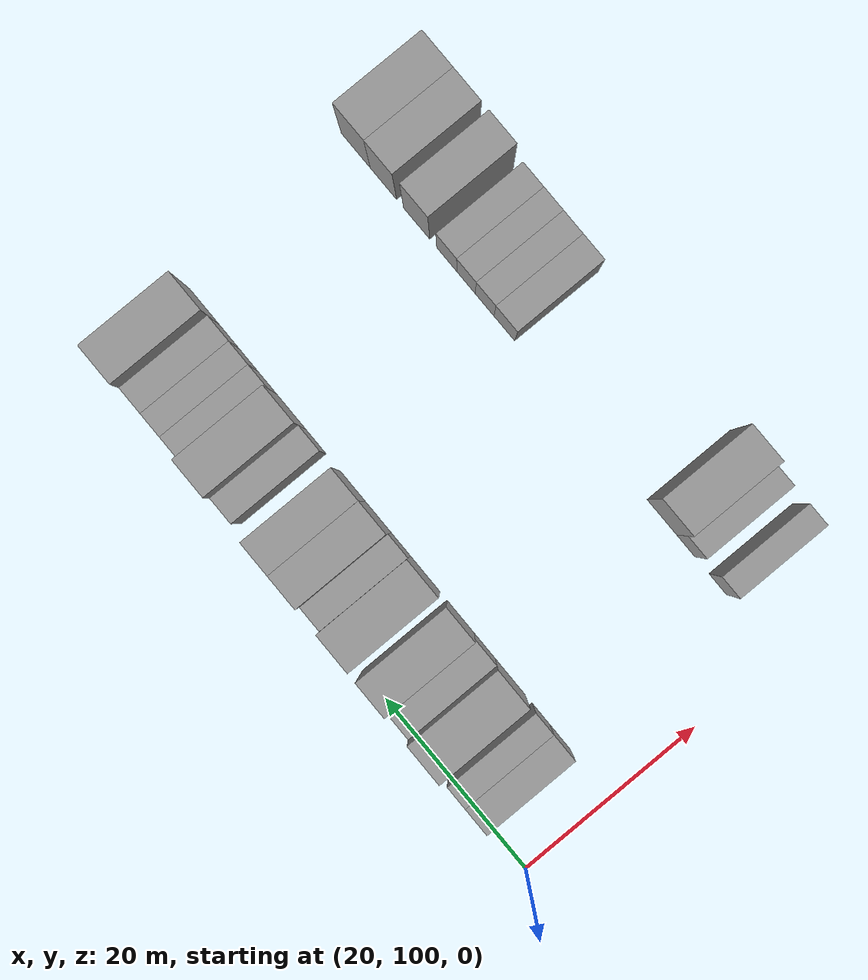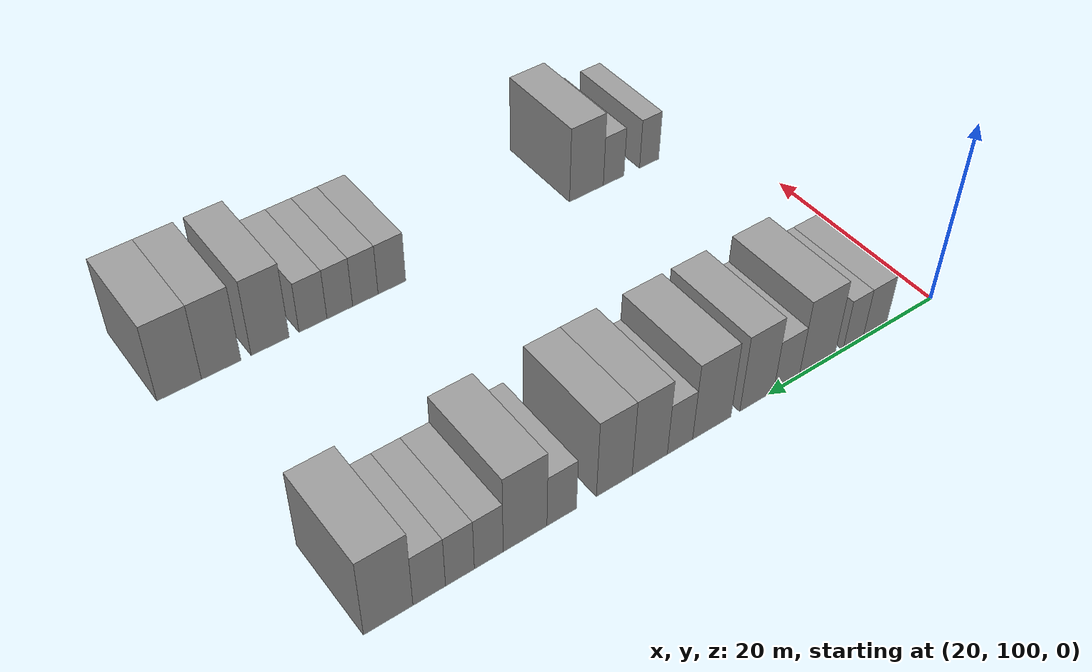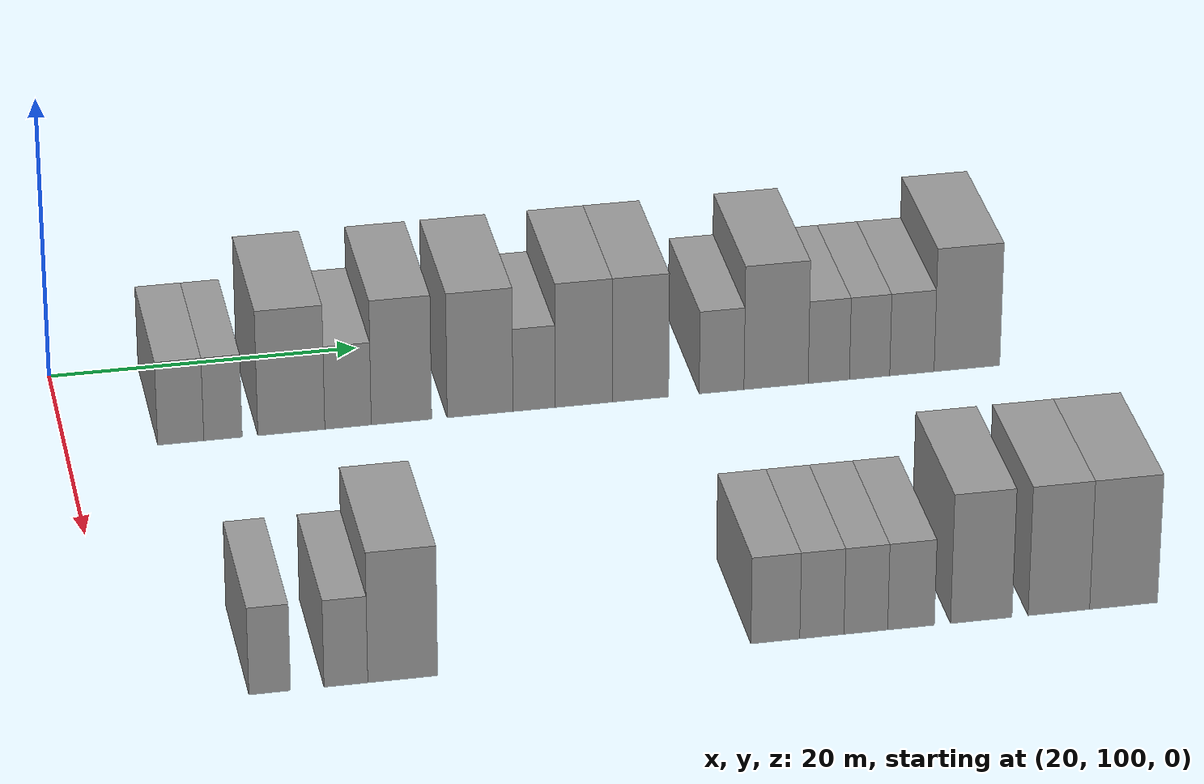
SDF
<sdf version="1.6">
 <world name="default">
  <model name="building_77">
   <static>1</static>
   <pose>25.0000 107.2240 0 0.000000 0.000000 0.000000</pose>
   <link name="link">
    <pose>0 0 3.00 0 0 0</pose>
    <collision name="collision"><geometry><box><size>10.0000 2.9394 6.0000</size></box></geometry></collision>
    <visual name="visual">
     <cast_shadows>0</cast_shadows>
     <geometry><box><size>10.0000 2.9394 6.0000</size></box></geometry>
     <material>
      <script>
       <uri>model://grey_wall/materials/scripts</uri>
       <uri>model://grey_wall/materials/textures</uri>
       <name>vrc/grey_wall</name>
      </script>
     </material>
    </visual>
   </link>
  </model>
  <model name="building_78">
   <static>1</static>
   <pose>25.0000 109.9187 0 0.000000 0.000000 0.000000</pose>
   <link name="link">
    <pose>0 0 3.00 0 0 0</pose>
    <collision name="collision"><geometry><box><size>10.0000 2.4499 6.0000</size></box></geometry></collision>
    <visual name="visual">
     <cast_shadows>0</cast_shadows>
     <geometry><box><size>10.0000 2.4499 6.0000</size></box></geometry>
     <material>
      <script>
       <uri>model://grey_wall/materials/scripts</uri>
       <uri>model://grey_wall/materials/textures</uri>
       <name>vrc/grey_wall</name>
      </script>
     </material>
    </visual>
   </link>
  </model>
  <model name="building_79">
   <static>1</static>
   <pose>25.0000 114.2880 0 0.000000 0.000000 0.000000</pose>
   <link name="link">
    <pose>0 0 4.50 0 0 0</pose>
    <collision name="collision"><geometry><box><size>10.0000 4.2888 9.0000</size></box></geometry></collision>
    <visual name="visual">
     <cast_shadows>0</cast_shadows>
     <geometry><box><size>10.0000 4.2888 9.0000</size></box></geometry>
     <material>
      <script>
       <uri>model://grey_wall/materials/scripts</uri>
       <uri>model://grey_wall/materials/textures</uri>
       <name>vrc/grey_wall</name>
      </script>
     </material>
    </visual>
   </link>
  </model>
  <model name="building_80">
   <static>1</static>
   <pose>25.0000 117.9234 0 0.000000 0.000000 0.000000</pose>
   <link name="link">
    <pose>0 0 3.00 0 0 0</pose>
    <collision name="collision"><geometry><box><size>10.0000 2.9819 6.0000</size></box></geometry></collision>
    <visual name="visual">
     <cast_shadows>0</cast_shadows>
     <geometry><box><size>10.0000 2.9819 6.0000</size></box></geometry>
     <material>
      <script>
       <uri>model://grey_wall/materials/scripts</uri>
       <uri>model://grey_wall/materials/textures</uri>
       <name>vrc/grey_wall</name>
      </script>
     </material>
    </visual>
   </link>
  </model>
  <model name="building_81">
   <static>1</static>
   <pose>25.0000 121.3598 0 0.000000 0.000000 0.000000</pose>
   <link name="link">
    <pose>0 0 4.50 0 0 0</pose>
    <collision name="collision"><geometry><box><size>10.0000 3.8908 9.0000</size></box></geometry></collision>
    <visual name="visual">
     <cast_shadows>0</cast_shadows>
     <geometry><box><size>10.0000 3.8908 9.0000</size></box></geometry>
     <material>
      <script>
       <uri>model://grey_wall/materials/scripts</uri>
       <uri>model://grey_wall/materials/textures</uri>
       <name>vrc/grey_wall</name>
      </script>
     </material>
    </visual>
   </link>
  </model>
  <model name="building_82">
   <static>1</static>
   <pose>25.0000 126.4308 0 0.000000 0.000000 0.000000</pose>
   <link name="link">
    <pose>0 0 4.50 0 0 0</pose>
    <collision name="collision"><geometry><box><size>10.0000 4.2512 9.0000</size></box></geometry></collision>
    <visual name="visual">
     <cast_shadows>0</cast_shadows>
     <geometry><box><size>10.0000 4.2512 9.0000</size></box></geometry>
     <material>
      <script>
       <uri>model://grey_wall/materials/scripts</uri>
       <uri>model://grey_wall/materials/textures</uri>
       <name>vrc/grey_wall</name>
      </script>
     </material>
    </visual>
   </link>
  </model>
  <model name="building_83">
   <static>1</static>
   <pose>25.0000 129.9223 0 0.000000 0.000000 0.000000</pose>
   <link name="link">
    <pose>0 0 3.00 0 0 0</pose>
    <collision name="collision"><geometry><box><size>10.0000 2.7317 6.0000</size></box></geometry></collision>
    <visual name="visual">
     <cast_shadows>0</cast_shadows>
     <geometry><box><size>10.0000 2.7317 6.0000</size></box></geometry>
     <material>
      <script>
       <uri>model://grey_wall/materials/scripts</uri>
       <uri>model://grey_wall/materials/textures</uri>
       <name>vrc/grey_wall</name>
      </script>
     </material>
    </visual>
   </link>
  </model>
  <model name="building_84">
   <static>1</static>
   <pose>25.0000 133.1480 0 0.000000 0.000000 0.000000</pose>
   <link name="link">
    <pose>0 0 4.50 0 0 0</pose>
    <collision name="collision"><geometry><box><size>10.0000 3.7199 9.0000</size></box></geometry></collision>
    <visual name="visual">
     <cast_shadows>0</cast_shadows>
     <geometry><box><size>10.0000 3.7199 9.0000</size></box></geometry>
     <material>
      <script>
       <uri>model://grey_wall/materials/scripts</uri>
       <uri>model://grey_wall/materials/textures</uri>
       <name>vrc/grey_wall</name>
      </script>
     </material>
    </visual>
   </link>
  </model>
  <model name="building_85">
   <static>1</static>
   <pose>25.0000 136.8513 0 0.000000 0.000000 0.000000</pose>
   <link name="link">
    <pose>0 0 4.50 0 0 0</pose>
    <collision name="collision"><geometry><box><size>10.0000 3.6866 9.0000</size></box></geometry></collision>
    <visual name="visual">
     <cast_shadows>0</cast_shadows>
     <geometry><box><size>10.0000 3.6866 9.0000</size></box></geometry>
     <material>
      <script>
       <uri>model://grey_wall/materials/scripts</uri>
       <uri>model://grey_wall/materials/textures</uri>
       <name>vrc/grey_wall</name>
      </script>
     </material>
    </visual>
   </link>
  </model>
  <model name="building_86">
   <static>1</static>
   <pose>25.0000 142.1601 0 0.000000 0.000000 0.000000</pose>
   <link name="link">
    <pose>0 0 3.00 0 0 0</pose>
    <collision name="collision"><geometry><box><size>10.0000 2.9312 6.0000</size></box></geometry></collision>
    <visual name="visual">
     <cast_shadows>0</cast_shadows>
     <geometry><box><size>10.0000 2.9312 6.0000</size></box></geometry>
     <material>
      <script>
       <uri>model://grey_wall/materials/scripts</uri>
       <uri>model://grey_wall/materials/textures</uri>
       <name>vrc/grey_wall</name>
      </script>
     </material>
    </visual>
   </link>
  </model>
  <model name="building_87">
   <static>1</static>
   <pose>25.0000 145.7357 0 0.000000 0.000000 0.000000</pose>
   <link name="link">
    <pose>0 0 4.50 0 0 0</pose>
    <collision name="collision"><geometry><box><size>10.0000 4.2200 9.0000</size></box></geometry></collision>
    <visual name="visual">
     <cast_shadows>0</cast_shadows>
     <geometry><box><size>10.0000 4.2200 9.0000</size></box></geometry>
     <material>
      <script>
       <uri>model://grey_wall/materials/scripts</uri>
       <uri>model://grey_wall/materials/textures</uri>
       <name>vrc/grey_wall</name>
      </script>
     </material>
    </visual>
   </link>
  </model>
  <model name="building_88">
   <static>1</static>
   <pose>25.0000 149.2051 0 0.000000 0.000000 0.000000</pose>
   <link name="link">
    <pose>0 0 3.00 0 0 0</pose>
    <collision name="collision"><geometry><box><size>10.0000 2.7187 6.0000</size></box></geometry></collision>
    <visual name="visual">
     <cast_shadows>0</cast_shadows>
     <geometry><box><size>10.0000 2.7187 6.0000</size></box></geometry>
     <material>
      <script>
       <uri>model://grey_wall/materials/scripts</uri>
       <uri>model://grey_wall/materials/textures</uri>
       <name>vrc/grey_wall</name>
      </script>
     </material>
    </visual>
   </link>
  </model>
  <model name="building_89">
   <static>1</static>
   <pose>25.0000 151.8957 0 0.000000 0.000000 0.000000</pose>
   <link name="link">
    <pose>0 0 3.00 0 0 0</pose>
    <collision name="collision"><geometry><box><size>10.0000 2.6626 6.0000</size></box></geometry></collision>
    <visual name="visual">
     <cast_shadows>0</cast_shadows>
     <geometry><box><size>10.0000 2.6626 6.0000</size></box></geometry>
     <material>
      <script>
       <uri>model://grey_wall/materials/scripts</uri>
       <uri>model://grey_wall/materials/textures</uri>
       <name>vrc/grey_wall</name>
      </script>
     </material>
    </visual>
   </link>
  </model>
  <model name="building_90">
   <static>1</static>
   <pose>25.0000 154.6971 0 0.000000 0.000000 0.000000</pose>
   <link name="link">
    <pose>0 0 3.00 0 0 0</pose>
    <collision name="collision"><geometry><box><size>10.0000 2.9401 6.0000</size></box></geometry></collision>
    <visual name="visual">
     <cast_shadows>0</cast_shadows>
     <geometry><box><size>10.0000 2.9401 6.0000</size></box></geometry>
     <material>
      <script>
       <uri>model://grey_wall/materials/scripts</uri>
       <uri>model://grey_wall/materials/textures</uri>
       <name>vrc/grey_wall</name>
      </script>
     </material>
    </visual>
   </link>
  </model>
  <model name="building_91">
   <static>1</static>
   <pose>25.0000 158.3461 0 0.000000 0.000000 0.000000</pose>
   <link name="link">
    <pose>0 0 4.50 0 0 0</pose>
    <collision name="collision"><geometry><box><size>10.0000 4.3579 9.0000</size></box></geometry></collision>
    <visual name="visual">
     <cast_shadows>0</cast_shadows>
     <geometry><box><size>10.0000 4.3579 9.0000</size></box></geometry>
     <material>
      <script>
       <uri>model://grey_wall/materials/scripts</uri>
       <uri>model://grey_wall/materials/textures</uri>
       <name>vrc/grey_wall</name>
      </script>
     </material>
    </visual>
   </link>
  </model>
  <model name="building_180">
   <static>1</static>
   <pose>55.0000 108.6047 0 0.000000 0.000000 0.000000</pose>
   <link name="link">
    <pose>0 0 3.00 0 0 0</pose>
    <collision name="collision"><geometry><box><size>10.0000 2.4838 6.0000</size></box></geometry></collision>
    <visual name="visual">
     <cast_shadows>0</cast_shadows>
     <geometry><box><size>10.0000 2.4838 6.0000</size></box></geometry>
     <material>
      <script>
       <uri>model://grey_wall/materials/scripts</uri>
       <uri>model://grey_wall/materials/textures</uri>
       <name>vrc/grey_wall</name>
      </script>
     </material>
    </visual>
   </link>
  </model>
  <model name="building_181">
   <static>1</static>
   <pose>55.0000 113.1565 0 0.000000 0.000000 0.000000</pose>
   <link name="link">
    <pose>0 0 3.00 0 0 0</pose>
    <collision name="collision"><geometry><box><size>10.0000 2.6197 6.0000</size></box></geometry></collision>
    <visual name="visual">
     <cast_shadows>0</cast_shadows>
     <geometry><box><size>10.0000 2.6197 6.0000</size></box></geometry>
     <material>
      <script>
       <uri>model://grey_wall/materials/scripts</uri>
       <uri>model://grey_wall/materials/textures</uri>
       <name>vrc/grey_wall</name>
      </script>
     </material>
    </visual>
   </link>
  </model>
  <model name="building_182">
   <static>1</static>
   <pose>55.0000 116.5625 0 0.000000 0.000000 0.000000</pose>
   <link name="link">
    <pose>0 0 4.50 0 0 0</pose>
    <collision name="collision"><geometry><box><size>10.0000 4.1923 9.0000</size></box></geometry></collision>
    <visual name="visual">
     <cast_shadows>0</cast_shadows>
     <geometry><box><size>10.0000 4.1923 9.0000</size></box></geometry>
     <material>
      <script>
       <uri>model://grey_wall/materials/scripts</uri>
       <uri>model://grey_wall/materials/textures</uri>
       <name>vrc/grey_wall</name>
      </script>
     </material>
    </visual>
   </link>
  </model>
  <model name="building_183">
   <static>1</static>
   <pose>55.0000 139.1529 0 0.000000 0.000000 0.000000</pose>
   <link name="link">
    <pose>0 0 3.00 0 0 0</pose>
    <collision name="collision"><geometry><box><size>10.0000 2.9962 6.0000</size></box></geometry></collision>
    <visual name="visual">
     <cast_shadows>0</cast_shadows>
     <geometry><box><size>10.0000 2.9962 6.0000</size></box></geometry>
     <material>
      <script>
       <uri>model://grey_wall/materials/scripts</uri>
       <uri>model://grey_wall/materials/textures</uri>
       <name>vrc/grey_wall</name>
      </script>
     </material>
    </visual>
   </link>
  </model>
  <model name="building_184">
   <static>1</static>
   <pose>55.0000 142.0051 0 0.000000 0.000000 0.000000</pose>
   <link name="link">
    <pose>0 0 3.00 0 0 0</pose>
    <collision name="collision"><geometry><box><size>10.0000 2.7082 6.0000</size></box></geometry></collision>
    <visual name="visual">
     <cast_shadows>0</cast_shadows>
     <geometry><box><size>10.0000 2.7082 6.0000</size></box></geometry>
     <material>
      <script>
       <uri>model://grey_wall/materials/scripts</uri>
       <uri>model://grey_wall/materials/textures</uri>
       <name>vrc/grey_wall</name>
      </script>
     </material>
    </visual>
   </link>
  </model>
  <model name="building_185">
   <static>1</static>
   <pose>55.0000 144.7057 0 0.000000 0.000000 0.000000</pose>
   <link name="link">
    <pose>0 0 3.00 0 0 0</pose>
    <collision name="collision"><geometry><box><size>10.0000 2.6929 6.0000</size></box></geometry></collision>
    <visual name="visual">
     <cast_shadows>0</cast_shadows>
     <geometry><box><size>10.0000 2.6929 6.0000</size></box></geometry>
     <material>
      <script>
       <uri>model://grey_wall/materials/scripts</uri>
       <uri>model://grey_wall/materials/textures</uri>
       <name>vrc/grey_wall</name>
      </script>
     </material>
    </visual>
   </link>
  </model>
  <model name="building_186">
   <static>1</static>
   <pose>55.0000 147.4935 0 0.000000 0.000000 0.000000</pose>
   <link name="link">
    <pose>0 0 3.00 0 0 0</pose>
    <collision name="collision"><geometry><box><size>10.0000 2.8828 6.0000</size></box></geometry></collision>
    <visual name="visual">
     <cast_shadows>0</cast_shadows>
     <geometry><box><size>10.0000 2.8828 6.0000</size></box></geometry>
     <material>
      <script>
       <uri>model://grey_wall/materials/scripts</uri>
       <uri>model://grey_wall/materials/textures</uri>
       <name>vrc/grey_wall</name>
      </script>
     </material>
    </visual>
   </link>
  </model>
  <model name="building_187">
   <static>1</static>
   <pose>55.0000 151.8379 0 0.000000 0.000000 0.000000</pose>
   <link name="link">
    <pose>0 0 4.50 0 0 0</pose>
    <collision name="collision"><geometry><box><size>10.0000 3.8060 9.0000</size></box></geometry></collision>
    <visual name="visual">
     <cast_shadows>0</cast_shadows>
     <geometry><box><size>10.0000 3.8060 9.0000</size></box></geometry>
     <material>
      <script>
       <uri>model://grey_wall/materials/scripts</uri>
       <uri>model://grey_wall/materials/textures</uri>
       <name>vrc/grey_wall</name>
      </script>
     </material>
    </visual>
   </link>
  </model>
  <model name="building_188">
   <static>1</static>
   <pose>55.0000 156.6544 0 0.000000 0.000000 0.000000</pose>
   <link name="link">
    <pose>0 0 4.50 0 0 0</pose>
    <collision name="collision"><geometry><box><size>10.0000 3.8270 9.0000</size></box></geometry></collision>
    <visual name="visual">
     <cast_shadows>0</cast_shadows>
     <geometry><box><size>10.0000 3.8270 9.0000</size></box></geometry>
     <material>
      <script>
       <uri>model://grey_wall/materials/scripts</uri>
       <uri>model://grey_wall/materials/textures</uri>
       <name>vrc/grey_wall</name>
      </script>
     </material>
    </visual>
   </link>
  </model>
  <model name="building_189">
   <static>1</static>
   <pose>55.0000 160.6828 0 0.000000 0.000000 0.000000</pose>
   <link name="link">
    <pose>0 0 4.50 0 0 0</pose>
    <collision name="collision"><geometry><box><size>10.0000 4.2298 9.0000</size></box></geometry></collision>
    <visual name="visual">
     <cast_shadows>0</cast_shadows>
     <geometry><box><size>10.0000 4.2298 9.0000</size></box></geometry>
     <material>
      <script>
       <uri>model://grey_wall/materials/scripts</uri>
       <uri>model://grey_wall/materials/textures</uri>
       <name>vrc/grey_wall</name>
      </script>
     </material>
    </visual>
   </link>
  </model>
 </world>
</sdf>
